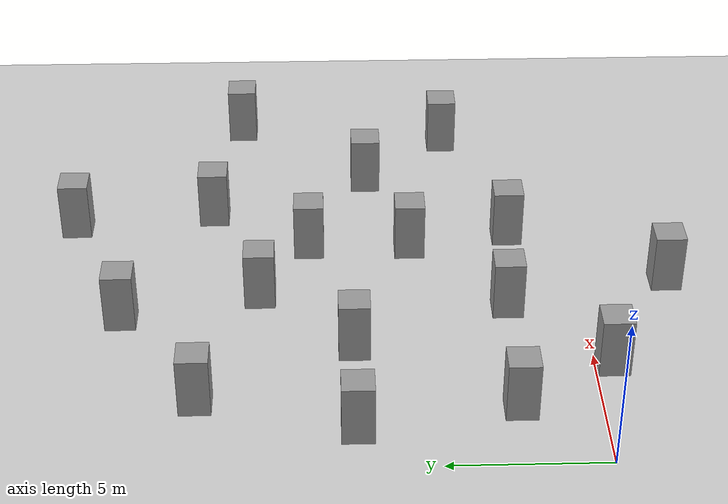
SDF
<sdf version="1.7">
 <world name="default">
  <light name="sun" type="directional">
   <pose>0 0 10 0 -0 0</pose>
   <diffuse>0.8 0.8 0.8 1</diffuse>
   <specular>0.2 0.2 0.2 1</specular>
   <attenuation>
    <range>1000</range>
    <constant>0.9</constant>
    <linear>0.01</linear>
    <quadratic>0.001</quadratic>
   </attenuation>
   <direction>-0.5 0.1 -0.9</direction>
   <spot><inner_angle>0</inner_angle><outer_angle>0</outer_angle><falloff>0</falloff></spot>
  </light>
  <model name="ground_plane">
   <static>1</static>
   <link name="link">
    <collision name="collision">
     <geometry><plane><normal>0 0 1</normal><size>100 100</size></plane></geometry>
     <surface>
      <contact><collide_bitmask>65535</collide_bitmask></contact>
      <friction><ode><mu>100</mu><mu2>50</mu2></ode></friction>
     </surface>
    </collision>
    <visual name="visual">
     <cast_shadows>0</cast_shadows>
     <geometry><plane><normal>0 0 1</normal><size>100 100</size></plane></geometry>
     <material>
      <script><uri>file://media/materials/scripts/gazebo.material</uri><name>Gazebo/Grey</name></script>
     </material>
    </visual>
   </link>
  </model>
  <gravity>0 0 -9.8</gravity>
  <magnetic_field>6e-06 2.3e-05 -4.2e-05</magnetic_field>
  <atmosphere type="adiabatic"/>
  <physics type="ode">
   <max_step_size>0.001</max_step_size>
   <real_time_factor>1</real_time_factor>
   <real_time_update_rate>1000</real_time_update_rate>
  </physics>
  <scene><ambient>0.4 0.4 0.4 1</ambient><background>0.7 0.7 0.7 1</background><shadows>1</shadows></scene>
  <spherical_coordinates>
   <surface_model>EARTH_WGS84</surface_model>
   <latitude_deg>0</latitude_deg>
   <longitude_deg>0</longitude_deg>
   <elevation>0</elevation>
   <heading_deg>0</heading_deg>
  </spherical_coordinates>
  <model name="quadrotor_sim">
   <link name="link_0">
    <inertial>
     <mass>1</mass>
     <inertia>
      <ixx>0.166667</ixx>
      <ixy>0</ixy>
      <ixz>0</ixz>
      <iyy>0.166667</iyy>
      <iyz>0</iyz>
      <izz>0.166667</izz>
     </inertia>
    </inertial>
    <visual name="visual">
     <geometry><box><size>1 1 3</size></box></geometry>
     <material>
      <lighting>1</lighting>
      <script><uri>file://media/materials/scripts/gazebo.material</uri><name>Gazebo/Grey</name></script>
      <shader type="pixel"><normal_map>__default__</normal_map></shader>
      <emissive>0 0 0 1</emissive>
      <ambient>0.3 0.3 0.3 1</ambient>
      <diffuse>0.7 0.7 0.7 1</diffuse>
      <specular>0.01 0.01 0.01 1</specular>
     </material>
    </visual>
    <collision name="collision">
     <geometry><box><size>1 1 1</size></box></geometry>
     <surface>
      <friction>
       <ode><mu>1</mu><mu2>1</mu2><fdir1>0 0 0</fdir1><slip1>0</slip1><slip2>0</slip2></ode>
       <torsional>
        <coefficient>1</coefficient>
        <patch_radius>0</patch_radius>
        <surface_radius>0</surface_radius>
        <use_patch_radius>1</use_patch_radius>
        <ode><slip>0</slip></ode>
       </torsional>
      </friction>
      <bounce><restitution_coefficient>0</restitution_coefficient><threshold>1e+06</threshold></bounce>
      <contact>
       <collide_without_contact>0</collide_without_contact>
       <collide_without_contact_bitmask>1</collide_without_contact_bitmask>
       <collide_bitmask>1</collide_bitmask>
       <ode>
        <soft_cfm>0</soft_cfm>
        <soft_erp>0.2</soft_erp>
        <kp>1e+13</kp>
        <kd>1</kd>
        <max_vel>0.01</max_vel>
        <min_depth>0</min_depth>
       </ode>
       <bullet>
        <split_impulse>1</split_impulse>
        <split_impulse_penetration_threshold>-0.01</split_impulse_penetration_threshold>
        <soft_cfm>0</soft_cfm>
        <soft_erp>0.2</soft_erp>
        <kp>1e+13</kp>
        <kd>1</kd>
       </bullet>
      </contact>
     </surface>
    </collision>
   </link>
   <static>0</static>
   <pose>2.48639 2.52913 0.5 0 -0 0</pose>
  </model>
  <model name="quadrotor_sim_clone">
   <link name="link_0">
    <inertial>
     <mass>1</mass>
     <inertia>
      <ixx>0.166667</ixx>
      <ixy>0</ixy>
      <ixz>0</ixz>
      <iyy>0.166667</iyy>
      <iyz>0</iyz>
      <izz>0.166667</izz>
     </inertia>
    </inertial>
    <visual name="visual">
     <geometry><box><size>1 1 3</size></box></geometry>
     <material>
      <lighting>1</lighting>
      <script><uri>file://media/materials/scripts/gazebo.material</uri><name>Gazebo/Grey</name></script>
      <shader type="pixel"><normal_map>__default__</normal_map></shader>
      <emissive>0 0 0 1</emissive>
      <ambient>0.3 0.3 0.3 1</ambient>
      <diffuse>0.7 0.7 0.7 1</diffuse>
      <specular>0.01 0.01 0.01 1</specular>
     </material>
    </visual>
    <collision name="collision">
     <geometry><box><size>1 1 1</size></box></geometry>
     <surface>
      <friction>
       <ode><mu>1</mu><mu2>1</mu2><fdir1>0 0 0</fdir1><slip1>0</slip1><slip2>0</slip2></ode>
       <torsional>
        <coefficient>1</coefficient>
        <patch_radius>0</patch_radius>
        <surface_radius>0</surface_radius>
        <use_patch_radius>1</use_patch_radius>
        <ode><slip>0</slip></ode>
       </torsional>
      </friction>
      <bounce><restitution_coefficient>0</restitution_coefficient><threshold>1e+06</threshold></bounce>
      <contact>
       <collide_without_contact>0</collide_without_contact>
       <collide_without_contact_bitmask>1</collide_without_contact_bitmask>
       <collide_bitmask>1</collide_bitmask>
       <ode>
        <soft_cfm>0</soft_cfm>
        <soft_erp>0.2</soft_erp>
        <kp>1e+13</kp>
        <kd>1</kd>
        <max_vel>0.01</max_vel>
        <min_depth>0</min_depth>
       </ode>
       <bullet>
        <split_impulse>1</split_impulse>
        <split_impulse_penetration_threshold>-0.01</split_impulse_penetration_threshold>
        <soft_cfm>0</soft_cfm>
        <soft_erp>0.2</soft_erp>
        <kp>1e+13</kp>
        <kd>1</kd>
       </bullet>
      </contact>
     </surface>
    </collision>
   </link>
   <static>0</static>
   <pose>4.49723 -0.544255 0.5 0 -0 0</pose>
  </model>
  <model name="quadrotor_sim_clone_0">
   <link name="link_0">
    <inertial>
     <mass>1</mass>
     <inertia>
      <ixx>0.166667</ixx>
      <ixy>0</ixy>
      <ixz>0</ixz>
      <iyy>0.166667</iyy>
      <iyz>0</iyz>
      <izz>0.166667</izz>
     </inertia>
    </inertial>
    <visual name="visual">
     <geometry><box><size>1 1 3</size></box></geometry>
     <material>
      <lighting>1</lighting>
      <script><uri>file://media/materials/scripts/gazebo.material</uri><name>Gazebo/Grey</name></script>
      <shader type="pixel"><normal_map>__default__</normal_map></shader>
      <emissive>0 0 0 1</emissive>
      <ambient>0.3 0.3 0.3 1</ambient>
      <diffuse>0.7 0.7 0.7 1</diffuse>
      <specular>0.01 0.01 0.01 1</specular>
     </material>
    </visual>
    <collision name="collision">
     <geometry><box><size>1 1 1</size></box></geometry>
     <surface>
      <friction>
       <ode><mu>1</mu><mu2>1</mu2><fdir1>0 0 0</fdir1><slip1>0</slip1><slip2>0</slip2></ode>
       <torsional>
        <coefficient>1</coefficient>
        <patch_radius>0</patch_radius>
        <surface_radius>0</surface_radius>
        <use_patch_radius>1</use_patch_radius>
        <ode><slip>0</slip></ode>
       </torsional>
      </friction>
      <bounce><restitution_coefficient>0</restitution_coefficient><threshold>1e+06</threshold></bounce>
      <contact>
       <collide_without_contact>0</collide_without_contact>
       <collide_without_contact_bitmask>1</collide_without_contact_bitmask>
       <collide_bitmask>1</collide_bitmask>
       <ode>
        <soft_cfm>0</soft_cfm>
        <soft_erp>0.2</soft_erp>
        <kp>1e+13</kp>
        <kd>1</kd>
        <max_vel>0.01</max_vel>
        <min_depth>0</min_depth>
       </ode>
       <bullet>
        <split_impulse>1</split_impulse>
        <split_impulse_penetration_threshold>-0.01</split_impulse_penetration_threshold>
        <soft_cfm>0</soft_cfm>
        <soft_erp>0.2</soft_erp>
        <kp>1e+13</kp>
        <kd>1</kd>
       </bullet>
      </contact>
     </surface>
    </collision>
   </link>
   <static>0</static>
   <pose>7.54201 2.47525 0.5 0 -0 0</pose>
  </model>
  <model name="quadrotor_sim_clone_1">
   <link name="link_0">
    <inertial>
     <mass>1</mass>
     <inertia>
      <ixx>0.166667</ixx>
      <ixy>0</ixy>
      <ixz>0</ixz>
      <iyy>0.166667</iyy>
      <iyz>0</iyz>
      <izz>0.166667</izz>
     </inertia>
    </inertial>
    <visual name="visual">
     <geometry><box><size>1 1 3</size></box></geometry>
     <material>
      <lighting>1</lighting>
      <script><uri>file://media/materials/scripts/gazebo.material</uri><name>Gazebo/Grey</name></script>
      <shader type="pixel"><normal_map>__default__</normal_map></shader>
      <emissive>0 0 0 1</emissive>
      <ambient>0.3 0.3 0.3 1</ambient>
      <diffuse>0.7 0.7 0.7 1</diffuse>
      <specular>0.01 0.01 0.01 1</specular>
     </material>
    </visual>
    <collision name="collision">
     <geometry><box><size>1 1 1</size></box></geometry>
     <surface>
      <friction>
       <ode><mu>1</mu><mu2>1</mu2><fdir1>0 0 0</fdir1><slip1>0</slip1><slip2>0</slip2></ode>
       <torsional>
        <coefficient>1</coefficient>
        <patch_radius>0</patch_radius>
        <surface_radius>0</surface_radius>
        <use_patch_radius>1</use_patch_radius>
        <ode><slip>0</slip></ode>
       </torsional>
      </friction>
      <bounce><restitution_coefficient>0</restitution_coefficient><threshold>1e+06</threshold></bounce>
      <contact>
       <collide_without_contact>0</collide_without_contact>
       <collide_without_contact_bitmask>1</collide_without_contact_bitmask>
       <collide_bitmask>1</collide_bitmask>
       <ode>
        <soft_cfm>0</soft_cfm>
        <soft_erp>0.2</soft_erp>
        <kp>1e+13</kp>
        <kd>1</kd>
        <max_vel>0.01</max_vel>
        <min_depth>0</min_depth>
       </ode>
       <bullet>
        <split_impulse>1</split_impulse>
        <split_impulse_penetration_threshold>-0.01</split_impulse_penetration_threshold>
        <soft_cfm>0</soft_cfm>
        <soft_erp>0.2</soft_erp>
        <kp>1e+13</kp>
        <kd>1</kd>
       </bullet>
      </contact>
     </surface>
    </collision>
   </link>
   <static>0</static>
   <pose>1.55461 7.46992 0.5 0 -0 0</pose>
  </model>
  <model name="quadrotor_sim_clone_1_clone">
   <link name="link_0">
    <inertial>
     <mass>1</mass>
     <inertia>
      <ixx>0.166667</ixx>
      <ixy>0</ixy>
      <ixz>0</ixz>
      <iyy>0.166667</iyy>
      <iyz>0</iyz>
      <izz>0.166667</izz>
     </inertia>
    </inertial>
    <visual name="visual">
     <geometry><box><size>1 1 3</size></box></geometry>
     <material>
      <lighting>1</lighting>
      <script><uri>file://media/materials/scripts/gazebo.material</uri><name>Gazebo/Grey</name></script>
      <shader type="pixel"><normal_map>__default__</normal_map></shader>
      <emissive>0 0 0 1</emissive>
      <ambient>0.3 0.3 0.3 1</ambient>
      <diffuse>0.7 0.7 0.7 1</diffuse>
      <specular>0.01 0.01 0.01 1</specular>
     </material>
    </visual>
    <collision name="collision">
     <geometry><box><size>1 1 1</size></box></geometry>
     <surface>
      <friction>
       <ode><mu>1</mu><mu2>1</mu2><fdir1>0 0 0</fdir1><slip1>0</slip1><slip2>0</slip2></ode>
       <torsional>
        <coefficient>1</coefficient>
        <patch_radius>0</patch_radius>
        <surface_radius>0</surface_radius>
        <use_patch_radius>1</use_patch_radius>
        <ode><slip>0</slip></ode>
       </torsional>
      </friction>
      <bounce><restitution_coefficient>0</restitution_coefficient><threshold>1e+06</threshold></bounce>
      <contact>
       <collide_without_contact>0</collide_without_contact>
       <collide_without_contact_bitmask>1</collide_without_contact_bitmask>
       <collide_bitmask>1</collide_bitmask>
       <ode>
        <soft_cfm>0</soft_cfm>
        <soft_erp>0.2</soft_erp>
        <kp>1e+13</kp>
        <kd>1</kd>
        <max_vel>0.01</max_vel>
        <min_depth>0</min_depth>
       </ode>
       <bullet>
        <split_impulse>1</split_impulse>
        <split_impulse_penetration_threshold>-0.01</split_impulse_penetration_threshold>
        <soft_cfm>0</soft_cfm>
        <soft_erp>0.2</soft_erp>
        <kp>1e+13</kp>
        <kd>1</kd>
       </bullet>
      </contact>
     </surface>
    </collision>
   </link>
   <static>0</static>
   <pose>5.46835 7.49662 0.5 0 -0 0</pose>
  </model>
  <model name="quadrotor_sim_clone_1_clone_clone">
   <link name="link_0">
    <inertial>
     <mass>1</mass>
     <inertia>
      <ixx>0.166667</ixx>
      <ixy>0</ixy>
      <ixz>0</ixz>
      <iyy>0.166667</iyy>
      <iyz>0</iyz>
      <izz>0.166667</izz>
     </inertia>
    </inertial>
    <visual name="visual">
     <geometry><box><size>1 1 3</size></box></geometry>
     <material>
      <lighting>1</lighting>
      <script><uri>file://media/materials/scripts/gazebo.material</uri><name>Gazebo/Grey</name></script>
      <shader type="pixel"><normal_map>__default__</normal_map></shader>
      <emissive>0 0 0 1</emissive>
      <ambient>0.3 0.3 0.3 1</ambient>
      <diffuse>0.7 0.7 0.7 1</diffuse>
      <specular>0.01 0.01 0.01 1</specular>
     </material>
    </visual>
    <collision name="collision">
     <geometry><box><size>1 1 1</size></box></geometry>
     <surface>
      <friction>
       <ode><mu>1</mu><mu2>1</mu2><fdir1>0 0 0</fdir1><slip1>0</slip1><slip2>0</slip2></ode>
       <torsional>
        <coefficient>1</coefficient>
        <patch_radius>0</patch_radius>
        <surface_radius>0</surface_radius>
        <use_patch_radius>1</use_patch_radius>
        <ode><slip>0</slip></ode>
       </torsional>
      </friction>
      <bounce><restitution_coefficient>0</restitution_coefficient><threshold>1e+06</threshold></bounce>
      <contact>
       <collide_without_contact>0</collide_without_contact>
       <collide_without_contact_bitmask>1</collide_without_contact_bitmask>
       <collide_bitmask>1</collide_bitmask>
       <ode>
        <soft_cfm>0</soft_cfm>
        <soft_erp>0.2</soft_erp>
        <kp>1e+13</kp>
        <kd>1</kd>
        <max_vel>0.01</max_vel>
        <min_depth>0</min_depth>
       </ode>
       <bullet>
        <split_impulse>1</split_impulse>
        <split_impulse_penetration_threshold>-0.01</split_impulse_penetration_threshold>
        <soft_cfm>0</soft_cfm>
        <soft_erp>0.2</soft_erp>
        <kp>1e+13</kp>
        <kd>1</kd>
       </bullet>
      </contact>
     </surface>
    </collision>
   </link>
   <static>0</static>
   <pose>10.9623 5.51946 0.5 0 -0 0</pose>
  </model>
  <model name="quadrotor_sim_clone_1_clone_clone_clone">
   <link name="link_0">
    <inertial>
     <mass>1</mass>
     <inertia>
      <ixx>0.166667</ixx>
      <ixy>0</ixy>
      <ixz>0</ixz>
      <iyy>0.166667</iyy>
      <iyz>0</iyz>
      <izz>0.166667</izz>
     </inertia>
    </inertial>
    <visual name="visual">
     <geometry><box><size>1 1 3</size></box></geometry>
     <material>
      <lighting>1</lighting>
      <script><uri>file://media/materials/scripts/gazebo.material</uri><name>Gazebo/Grey</name></script>
      <shader type="pixel"><normal_map>__default__</normal_map></shader>
      <emissive>0 0 0 1</emissive>
      <ambient>0.3 0.3 0.3 1</ambient>
      <diffuse>0.7 0.7 0.7 1</diffuse>
      <specular>0.01 0.01 0.01 1</specular>
     </material>
    </visual>
    <collision name="collision">
     <geometry><box><size>1 1 1</size></box></geometry>
     <surface>
      <friction>
       <ode><mu>1</mu><mu2>1</mu2><fdir1>0 0 0</fdir1><slip1>0</slip1><slip2>0</slip2></ode>
       <torsional>
        <coefficient>1</coefficient>
        <patch_radius>0</patch_radius>
        <surface_radius>0</surface_radius>
        <use_patch_radius>1</use_patch_radius>
        <ode><slip>0</slip></ode>
       </torsional>
      </friction>
      <bounce><restitution_coefficient>0</restitution_coefficient><threshold>1e+06</threshold></bounce>
      <contact>
       <collide_without_contact>0</collide_without_contact>
       <collide_without_contact_bitmask>1</collide_without_contact_bitmask>
       <collide_bitmask>1</collide_bitmask>
       <ode>
        <soft_cfm>0</soft_cfm>
        <soft_erp>0.2</soft_erp>
        <kp>1e+13</kp>
        <kd>1</kd>
        <max_vel>0.01</max_vel>
        <min_depth>0</min_depth>
       </ode>
       <bullet>
        <split_impulse>1</split_impulse>
        <split_impulse_penetration_threshold>-0.01</split_impulse_penetration_threshold>
        <soft_cfm>0</soft_cfm>
        <soft_erp>0.2</soft_erp>
        <kp>1e+13</kp>
        <kd>1</kd>
       </bullet>
      </contact>
     </surface>
    </collision>
   </link>
   <static>0</static>
   <pose>8.25934 10.5307 0.5 0 -0 0</pose>
  </model>
  <model name="quadrotor_sim_clone_1_clone_clone_clone_0">
   <link name="link_0">
    <inertial>
     <mass>1</mass>
     <inertia>
      <ixx>0.166667</ixx>
      <ixy>0</ixy>
      <ixz>0</ixz>
      <iyy>0.166667</iyy>
      <iyz>0</iyz>
      <izz>0.166667</izz>
     </inertia>
    </inertial>
    <visual name="visual">
     <geometry><box><size>1 1 3</size></box></geometry>
     <material>
      <lighting>1</lighting>
      <script><uri>file://media/materials/scripts/gazebo.material</uri><name>Gazebo/Grey</name></script>
      <shader type="pixel"><normal_map>__default__</normal_map></shader>
      <emissive>0 0 0 1</emissive>
      <ambient>0.3 0.3 0.3 1</ambient>
      <diffuse>0.7 0.7 0.7 1</diffuse>
      <specular>0.01 0.01 0.01 1</specular>
     </material>
    </visual>
    <collision name="collision">
     <geometry><box><size>1 1 1</size></box></geometry>
     <surface>
      <friction>
       <ode><mu>1</mu><mu2>1</mu2><fdir1>0 0 0</fdir1><slip1>0</slip1><slip2>0</slip2></ode>
       <torsional>
        <coefficient>1</coefficient>
        <patch_radius>0</patch_radius>
        <surface_radius>0</surface_radius>
        <use_patch_radius>1</use_patch_radius>
        <ode><slip>0</slip></ode>
       </torsional>
      </friction>
      <bounce><restitution_coefficient>0</restitution_coefficient><threshold>1e+06</threshold></bounce>
      <contact>
       <collide_without_contact>0</collide_without_contact>
       <collide_without_contact_bitmask>1</collide_without_contact_bitmask>
       <collide_bitmask>1</collide_bitmask>
       <ode>
        <soft_cfm>0</soft_cfm>
        <soft_erp>0.2</soft_erp>
        <kp>1e+13</kp>
        <kd>1</kd>
        <max_vel>0.01</max_vel>
        <min_depth>0</min_depth>
       </ode>
       <bullet>
        <split_impulse>1</split_impulse>
        <split_impulse_penetration_threshold>-0.01</split_impulse_penetration_threshold>
        <soft_cfm>0</soft_cfm>
        <soft_erp>0.2</soft_erp>
        <kp>1e+13</kp>
        <kd>1</kd>
       </bullet>
      </contact>
     </surface>
    </collision>
   </link>
   <static>0</static>
   <pose>11.6691 2.13023 0.499995 -1e-05 -0 -0</pose>
  </model>
  <model name="quadrotor_sim_clone_1_clone_clone_clone_1">
   <link name="link_0">
    <inertial>
     <mass>1</mass>
     <inertia>
      <ixx>0.166667</ixx>
      <ixy>0</ixy>
      <ixz>0</ixz>
      <iyy>0.166667</iyy>
      <iyz>0</iyz>
      <izz>0.166667</izz>
     </inertia>
    </inertial>
    <visual name="visual">
     <geometry><box><size>1 1 3</size></box></geometry>
     <material>
      <lighting>1</lighting>
      <script><uri>file://media/materials/scripts/gazebo.material</uri><name>Gazebo/Grey</name></script>
      <shader type="pixel"><normal_map>__default__</normal_map></shader>
      <emissive>0 0 0 1</emissive>
      <ambient>0.3 0.3 0.3 1</ambient>
      <diffuse>0.7 0.7 0.7 1</diffuse>
      <specular>0.01 0.01 0.01 1</specular>
     </material>
    </visual>
    <collision name="collision">
     <geometry><box><size>1 1 1</size></box></geometry>
     <surface>
      <friction>
       <ode><mu>1</mu><mu2>1</mu2><fdir1>0 0 0</fdir1><slip1>0</slip1><slip2>0</slip2></ode>
       <torsional>
        <coefficient>1</coefficient>
        <patch_radius>0</patch_radius>
        <surface_radius>0</surface_radius>
        <use_patch_radius>1</use_patch_radius>
        <ode><slip>0</slip></ode>
       </torsional>
      </friction>
      <bounce><restitution_coefficient>0</restitution_coefficient><threshold>1e+06</threshold></bounce>
      <contact>
       <collide_without_contact>0</collide_without_contact>
       <collide_without_contact_bitmask>1</collide_without_contact_bitmask>
       <collide_bitmask>1</collide_bitmask>
       <ode>
        <soft_cfm>0</soft_cfm>
        <soft_erp>0.2</soft_erp>
        <kp>1e+13</kp>
        <kd>1</kd>
        <max_vel>0.01</max_vel>
        <min_depth>0</min_depth>
       </ode>
       <bullet>
        <split_impulse>1</split_impulse>
        <split_impulse_penetration_threshold>-0.01</split_impulse_penetration_threshold>
        <soft_cfm>0</soft_cfm>
        <soft_erp>0.2</soft_erp>
        <kp>1e+13</kp>
        <kd>1</kd>
       </bullet>
      </contact>
     </surface>
    </collision>
   </link>
   <static>0</static>
   <pose>8.91221 -2.90968 0.499995 0 1e-05 0</pose>
  </model>
  <model name="quadrotor_sim_clone_1_clone_clone_clone_clone">
   <link name="link_0">
    <inertial>
     <mass>1</mass>
     <inertia>
      <ixx>0.166667</ixx>
      <ixy>0</ixy>
      <ixz>0</ixz>
      <iyy>0.166667</iyy>
      <iyz>0</iyz>
      <izz>0.166667</izz>
     </inertia>
    </inertial>
    <visual name="visual">
     <geometry><box><size>1 1 3</size></box></geometry>
     <material>
      <lighting>1</lighting>
      <script><uri>file://media/materials/scripts/gazebo.material</uri><name>Gazebo/Grey</name></script>
      <shader type="pixel"><normal_map>__default__</normal_map></shader>
      <emissive>0 0 0 1</emissive>
      <ambient>0.3 0.3 0.3 1</ambient>
      <diffuse>0.7 0.7 0.7 1</diffuse>
      <specular>0.01 0.01 0.01 1</specular>
     </material>
    </visual>
    <collision name="collision">
     <geometry><box><size>1 1 1</size></box></geometry>
     <surface>
      <friction>
       <ode><mu>1</mu><mu2>1</mu2><fdir1>0 0 0</fdir1><slip1>0</slip1><slip2>0</slip2></ode>
       <torsional>
        <coefficient>1</coefficient>
        <patch_radius>0</patch_radius>
        <surface_radius>0</surface_radius>
        <use_patch_radius>1</use_patch_radius>
        <ode><slip>0</slip></ode>
       </torsional>
      </friction>
      <bounce><restitution_coefficient>0</restitution_coefficient><threshold>1e+06</threshold></bounce>
      <contact>
       <collide_without_contact>0</collide_without_contact>
       <collide_without_contact_bitmask>1</collide_without_contact_bitmask>
       <collide_bitmask>1</collide_bitmask>
       <ode>
        <soft_cfm>0</soft_cfm>
        <soft_erp>0.2</soft_erp>
        <kp>1e+13</kp>
        <kd>1</kd>
        <max_vel>0.01</max_vel>
        <min_depth>0</min_depth>
       </ode>
       <bullet>
        <split_impulse>1</split_impulse>
        <split_impulse_penetration_threshold>-0.01</split_impulse_penetration_threshold>
        <soft_cfm>0</soft_cfm>
        <soft_erp>0.2</soft_erp>
        <kp>1e+13</kp>
        <kd>1</kd>
       </bullet>
      </contact>
     </surface>
    </collision>
   </link>
   <static>0</static>
   <pose>2.94851 12.3713 0.499995 -1e-05 -0 -0</pose>
  </model>
  <model name="quadrotor_sim_clone_1_clone_clone_0">
   <link name="link_0">
    <inertial>
     <mass>1</mass>
     <inertia>
      <ixx>0.166667</ixx>
      <ixy>0</ixy>
      <ixz>0</ixz>
      <iyy>0.166667</iyy>
      <iyz>0</iyz>
      <izz>0.166667</izz>
     </inertia>
    </inertial>
    <visual name="visual">
     <geometry><box><size>1 1 3</size></box></geometry>
     <material>
      <lighting>1</lighting>
      <script><uri>file://media/materials/scripts/gazebo.material</uri><name>Gazebo/Grey</name></script>
      <shader type="pixel"><normal_map>__default__</normal_map></shader>
      <emissive>0 0 0 1</emissive>
      <ambient>0.3 0.3 0.3 1</ambient>
      <diffuse>0.7 0.7 0.7 1</diffuse>
      <specular>0.01 0.01 0.01 1</specular>
     </material>
    </visual>
    <collision name="collision">
     <geometry><box><size>1 1 1</size></box></geometry>
     <surface>
      <friction>
       <ode><mu>1</mu><mu2>1</mu2><fdir1>0 0 0</fdir1><slip1>0</slip1><slip2>0</slip2></ode>
       <torsional>
        <coefficient>1</coefficient>
        <patch_radius>0</patch_radius>
        <surface_radius>0</surface_radius>
        <use_patch_radius>1</use_patch_radius>
        <ode><slip>0</slip></ode>
       </torsional>
      </friction>
      <bounce><restitution_coefficient>0</restitution_coefficient><threshold>1e+06</threshold></bounce>
      <contact>
       <collide_without_contact>0</collide_without_contact>
       <collide_without_contact_bitmask>1</collide_without_contact_bitmask>
       <collide_bitmask>1</collide_bitmask>
       <ode>
        <soft_cfm>0</soft_cfm>
        <soft_erp>0.2</soft_erp>
        <kp>1e+13</kp>
        <kd>1</kd>
        <max_vel>0.01</max_vel>
        <min_depth>0</min_depth>
       </ode>
       <bullet>
        <split_impulse>1</split_impulse>
        <split_impulse_penetration_threshold>-0.01</split_impulse_penetration_threshold>
        <soft_cfm>0</soft_cfm>
        <soft_erp>0.2</soft_erp>
        <kp>1e+13</kp>
        <kd>1</kd>
       </bullet>
      </contact>
     </surface>
    </collision>
   </link>
   <static>0</static>
   <pose>15.1737 6.91589 0.499995 0 1e-05 0</pose>
  </model>
  <model name="quadrotor_sim_clone_1_clone_clone_clone_clone_0">
   <link name="link_0">
    <inertial>
     <mass>1</mass>
     <inertia>
      <ixx>0.166667</ixx>
      <ixy>0</ixy>
      <ixz>0</ixz>
      <iyy>0.166667</iyy>
      <iyz>0</iyz>
      <izz>0.166667</izz>
     </inertia>
    </inertial>
    <visual name="visual">
     <geometry><box><size>1 1 3</size></box></geometry>
     <material>
      <lighting>1</lighting>
      <script><uri>file://media/materials/scripts/gazebo.material</uri><name>Gazebo/Grey</name></script>
      <shader type="pixel"><normal_map>__default__</normal_map></shader>
      <emissive>0 0 0 1</emissive>
      <ambient>0.3 0.3 0.3 1</ambient>
      <diffuse>0.7 0.7 0.7 1</diffuse>
      <specular>0.01 0.01 0.01 1</specular>
     </material>
    </visual>
    <collision name="collision">
     <geometry><box><size>1 1 1</size></box></geometry>
     <surface>
      <friction>
       <ode><mu>1</mu><mu2>1</mu2><fdir1>0 0 0</fdir1><slip1>0</slip1><slip2>0</slip2></ode>
       <torsional>
        <coefficient>1</coefficient>
        <patch_radius>0</patch_radius>
        <surface_radius>0</surface_radius>
        <use_patch_radius>1</use_patch_radius>
        <ode><slip>0</slip></ode>
       </torsional>
      </friction>
      <bounce><restitution_coefficient>0</restitution_coefficient><threshold>1e+06</threshold></bounce>
      <contact>
       <collide_without_contact>0</collide_without_contact>
       <collide_without_contact_bitmask>1</collide_without_contact_bitmask>
       <collide_bitmask>1</collide_bitmask>
       <ode>
        <soft_cfm>0</soft_cfm>
        <soft_erp>0.2</soft_erp>
        <kp>1e+13</kp>
        <kd>1</kd>
        <max_vel>0.01</max_vel>
        <min_depth>0</min_depth>
       </ode>
       <bullet>
        <split_impulse>1</split_impulse>
        <split_impulse_penetration_threshold>-0.01</split_impulse_penetration_threshold>
        <soft_cfm>0</soft_cfm>
        <soft_erp>0.2</soft_erp>
        <kp>1e+13</kp>
        <kd>1</kd>
       </bullet>
      </contact>
     </surface>
    </collision>
   </link>
   <static>0</static>
   <pose>7.19557 14.9949 0.499995 -1e-05 -0 -0</pose>
  </model>
  <model name="quadrotor_sim_clone_1_clone_clone_clone_clone_0_clone">
   <link name="link_0">
    <inertial>
     <mass>1</mass>
     <inertia>
      <ixx>0.166667</ixx>
      <ixy>0</ixy>
      <ixz>0</ixz>
      <iyy>0.166667</iyy>
      <iyz>0</iyz>
      <izz>0.166667</izz>
     </inertia>
    </inertial>
    <visual name="visual">
     <geometry><box><size>1 1 3</size></box></geometry>
     <material>
      <lighting>1</lighting>
      <script><uri>file://media/materials/scripts/gazebo.material</uri><name>Gazebo/Grey</name></script>
      <shader type="pixel"><normal_map>__default__</normal_map></shader>
      <emissive>0 0 0 1</emissive>
      <ambient>0.3 0.3 0.3 1</ambient>
      <diffuse>0.7 0.7 0.7 1</diffuse>
      <specular>0.01 0.01 0.01 1</specular>
     </material>
    </visual>
    <collision name="collision">
     <geometry><box><size>1 1 1</size></box></geometry>
     <surface>
      <friction>
       <ode><mu>1</mu><mu2>1</mu2><fdir1>0 0 0</fdir1><slip1>0</slip1><slip2>0</slip2></ode>
       <torsional>
        <coefficient>1</coefficient>
        <patch_radius>0</patch_radius>
        <surface_radius>0</surface_radius>
        <use_patch_radius>1</use_patch_radius>
        <ode><slip>0</slip></ode>
       </torsional>
      </friction>
      <bounce><restitution_coefficient>0</restitution_coefficient><threshold>1e+06</threshold></bounce>
      <contact>
       <collide_without_contact>0</collide_without_contact>
       <collide_without_contact_bitmask>1</collide_without_contact_bitmask>
       <collide_bitmask>1</collide_bitmask>
       <ode>
        <soft_cfm>0</soft_cfm>
        <soft_erp>0.2</soft_erp>
        <kp>1e+13</kp>
        <kd>1</kd>
        <max_vel>0.01</max_vel>
        <min_depth>0</min_depth>
       </ode>
       <bullet>
        <split_impulse>1</split_impulse>
        <split_impulse_penetration_threshold>-0.01</split_impulse_penetration_threshold>
        <soft_cfm>0</soft_cfm>
        <soft_erp>0.2</soft_erp>
        <kp>1e+13</kp>
        <kd>1</kd>
       </bullet>
      </contact>
     </surface>
    </collision>
   </link>
   <static>0</static>
   <pose>13.0949 12.2376 0.499995 0 1e-05 0</pose>
  </model>
  <model name="quadrotor_sim_clone_1_clone_clone_0_clone">
   <link name="link_0">
    <inertial>
     <mass>1</mass>
     <inertia>
      <ixx>0.166667</ixx>
      <ixy>0</ixy>
      <ixz>0</ixz>
      <iyy>0.166667</iyy>
      <iyz>0</iyz>
      <izz>0.166667</izz>
     </inertia>
    </inertial>
    <visual name="visual">
     <geometry><box><size>1 1 3</size></box></geometry>
     <material>
      <lighting>1</lighting>
      <script><uri>file://media/materials/scripts/gazebo.material</uri><name>Gazebo/Grey</name></script>
      <shader type="pixel"><normal_map>__default__</normal_map></shader>
      <emissive>0 0 0 1</emissive>
      <ambient>0.3 0.3 0.3 1</ambient>
      <diffuse>0.7 0.7 0.7 1</diffuse>
      <specular>0.01 0.01 0.01 1</specular>
     </material>
    </visual>
    <collision name="collision">
     <geometry><box><size>1 1 1</size></box></geometry>
     <surface>
      <friction>
       <ode><mu>1</mu><mu2>1</mu2><fdir1>0 0 0</fdir1><slip1>0</slip1><slip2>0</slip2></ode>
       <torsional>
        <coefficient>1</coefficient>
        <patch_radius>0</patch_radius>
        <surface_radius>0</surface_radius>
        <use_patch_radius>1</use_patch_radius>
        <ode><slip>0</slip></ode>
       </torsional>
      </friction>
      <bounce><restitution_coefficient>0</restitution_coefficient><threshold>1e+06</threshold></bounce>
      <contact>
       <collide_without_contact>0</collide_without_contact>
       <collide_without_contact_bitmask>1</collide_without_contact_bitmask>
       <collide_bitmask>1</collide_bitmask>
       <ode>
        <soft_cfm>0</soft_cfm>
        <soft_erp>0.2</soft_erp>
        <kp>1e+13</kp>
        <kd>1</kd>
        <max_vel>0.01</max_vel>
        <min_depth>0</min_depth>
       </ode>
       <bullet>
        <split_impulse>1</split_impulse>
        <split_impulse_penetration_threshold>-0.01</split_impulse_penetration_threshold>
        <soft_cfm>0</soft_cfm>
        <soft_erp>0.2</soft_erp>
        <kp>1e+13</kp>
        <kd>1</kd>
       </bullet>
      </contact>
     </surface>
    </collision>
   </link>
   <static>0</static>
   <pose>17.872 4.03057 0.499995 0 1e-05 0</pose>
  </model>
  <model name="quadrotor_sim_clone_1_clone_clone_0_clone_0">
   <link name="link_0">
    <inertial>
     <mass>1</mass>
     <inertia>
      <ixx>0.166667</ixx>
      <ixy>0</ixy>
      <ixz>0</ixz>
      <iyy>0.166667</iyy>
      <iyz>0</iyz>
      <izz>0.166667</izz>
     </inertia>
    </inertial>
    <visual name="visual">
     <geometry><box><size>1 1 3</size></box></geometry>
     <material>
      <lighting>1</lighting>
      <script><uri>file://media/materials/scripts/gazebo.material</uri><name>Gazebo/Grey</name></script>
      <shader type="pixel"><normal_map>__default__</normal_map></shader>
      <emissive>0 0 0 1</emissive>
      <ambient>0.3 0.3 0.3 1</ambient>
      <diffuse>0.7 0.7 0.7 1</diffuse>
      <specular>0.01 0.01 0.01 1</specular>
     </material>
    </visual>
    <collision name="collision">
     <geometry><box><size>1 1 1</size></box></geometry>
     <surface>
      <friction>
       <ode><mu>1</mu><mu2>1</mu2><fdir1>0 0 0</fdir1><slip1>0</slip1><slip2>0</slip2></ode>
       <torsional>
        <coefficient>1</coefficient>
        <patch_radius>0</patch_radius>
        <surface_radius>0</surface_radius>
        <use_patch_radius>1</use_patch_radius>
        <ode><slip>0</slip></ode>
       </torsional>
      </friction>
      <bounce><restitution_coefficient>0</restitution_coefficient><threshold>1e+06</threshold></bounce>
      <contact>
       <collide_without_contact>0</collide_without_contact>
       <collide_without_contact_bitmask>1</collide_without_contact_bitmask>
       <collide_bitmask>1</collide_bitmask>
       <ode>
        <soft_cfm>0</soft_cfm>
        <soft_erp>0.2</soft_erp>
        <kp>1e+13</kp>
        <kd>1</kd>
        <max_vel>0.01</max_vel>
        <min_depth>0</min_depth>
       </ode>
       <bullet>
        <split_impulse>1</split_impulse>
        <split_impulse_penetration_threshold>-0.01</split_impulse_penetration_threshold>
        <soft_cfm>0</soft_cfm>
        <soft_erp>0.2</soft_erp>
        <kp>1e+13</kp>
        <kd>1</kd>
       </bullet>
      </contact>
     </surface>
    </collision>
   </link>
   <static>0</static>
   <pose>18.816 11.4136 0.499995 0 1e-05 0</pose>
  </model>
  <model name="quadrotor_sim_clone_1_clone_clone_clone_clone_0_clone_0">
   <link name="link_0">
    <inertial>
     <mass>1</mass>
     <inertia>
      <ixx>0.166667</ixx>
      <ixy>0</ixy>
      <ixz>0</ixz>
      <iyy>0.166667</iyy>
      <iyz>0</iyz>
      <izz>0.166667</izz>
     </inertia>
    </inertial>
    <visual name="visual">
     <geometry><box><size>1 1 3</size></box></geometry>
     <material>
      <lighting>1</lighting>
      <script><uri>file://media/materials/scripts/gazebo.material</uri><name>Gazebo/Grey</name></script>
      <shader type="pixel"><normal_map>__default__</normal_map></shader>
      <emissive>0 0 0 1</emissive>
      <ambient>0.3 0.3 0.3 1</ambient>
      <diffuse>0.7 0.7 0.7 1</diffuse>
      <specular>0.01 0.01 0.01 1</specular>
     </material>
    </visual>
    <collision name="collision">
     <geometry><box><size>1 1 1</size></box></geometry>
     <surface>
      <friction>
       <ode><mu>1</mu><mu2>1</mu2><fdir1>0 0 0</fdir1><slip1>0</slip1><slip2>0</slip2></ode>
       <torsional>
        <coefficient>1</coefficient>
        <patch_radius>0</patch_radius>
        <surface_radius>0</surface_radius>
        <use_patch_radius>1</use_patch_radius>
        <ode><slip>0</slip></ode>
       </torsional>
      </friction>
      <bounce><restitution_coefficient>0</restitution_coefficient><threshold>1e+06</threshold></bounce>
      <contact>
       <collide_without_contact>0</collide_without_contact>
       <collide_without_contact_bitmask>1</collide_without_contact_bitmask>
       <collide_bitmask>1</collide_bitmask>
       <ode>
        <soft_cfm>0</soft_cfm>
        <soft_erp>0.2</soft_erp>
        <kp>1e+13</kp>
        <kd>1</kd>
        <max_vel>0.01</max_vel>
        <min_depth>0</min_depth>
       </ode>
       <bullet>
        <split_impulse>1</split_impulse>
        <split_impulse_penetration_threshold>-0.01</split_impulse_penetration_threshold>
        <soft_cfm>0</soft_cfm>
        <soft_erp>0.2</soft_erp>
        <kp>1e+13</kp>
        <kd>1</kd>
       </bullet>
      </contact>
     </surface>
    </collision>
   </link>
   <static>0</static>
   <pose>12.4967 16.9632 0.499995 -1e-05 -0 0</pose>
  </model>
  <model name="quadrotor_sim_clone_1_clone_clone_1">
   <link name="link_0">
    <inertial>
     <mass>1</mass>
     <inertia>
      <ixx>0.166667</ixx>
      <ixy>0</ixy>
      <ixz>0</ixz>
      <iyy>0.166667</iyy>
      <iyz>0</iyz>
      <izz>0.166667</izz>
     </inertia>
    </inertial>
    <visual name="visual">
     <geometry><box><size>1 1 3</size></box></geometry>
     <material>
      <lighting>1</lighting>
      <script><uri>file://media/materials/scripts/gazebo.material</uri><name>Gazebo/Grey</name></script>
      <shader type="pixel"><normal_map>__default__</normal_map></shader>
      <emissive>0 0 0 1</emissive>
      <ambient>0.3 0.3 0.3 1</ambient>
      <diffuse>0.7 0.7 0.7 1</diffuse>
      <specular>0.01 0.01 0.01 1</specular>
     </material>
    </visual>
    <collision name="collision">
     <geometry><box><size>1 1 1</size></box></geometry>
     <surface>
      <friction>
       <ode><mu>1</mu><mu2>1</mu2><fdir1>0 0 0</fdir1><slip1>0</slip1><slip2>0</slip2></ode>
       <torsional>
        <coefficient>1</coefficient>
        <patch_radius>0</patch_radius>
        <surface_radius>0</surface_radius>
        <use_patch_radius>1</use_patch_radius>
        <ode><slip>0</slip></ode>
       </torsional>
      </friction>
      <bounce><restitution_coefficient>0</restitution_coefficient><threshold>1e+06</threshold></bounce>
      <contact>
       <collide_without_contact>0</collide_without_contact>
       <collide_without_contact_bitmask>1</collide_without_contact_bitmask>
       <collide_bitmask>1</collide_bitmask>
       <ode>
        <soft_cfm>0</soft_cfm>
        <soft_erp>0.2</soft_erp>
        <kp>1e+13</kp>
        <kd>1</kd>
        <max_vel>0.01</max_vel>
        <min_depth>0</min_depth>
       </ode>
       <bullet>
        <split_impulse>1</split_impulse>
        <split_impulse_penetration_threshold>-0.01</split_impulse_penetration_threshold>
        <soft_cfm>0</soft_cfm>
        <soft_erp>0.2</soft_erp>
        <kp>1e+13</kp>
        <kd>1</kd>
       </bullet>
      </contact>
     </surface>
    </collision>
   </link>
   <static>0</static>
   <pose>11.0321 8.92808 0.5 0 -0 0</pose>
  </model>
 </world>
</sdf>
